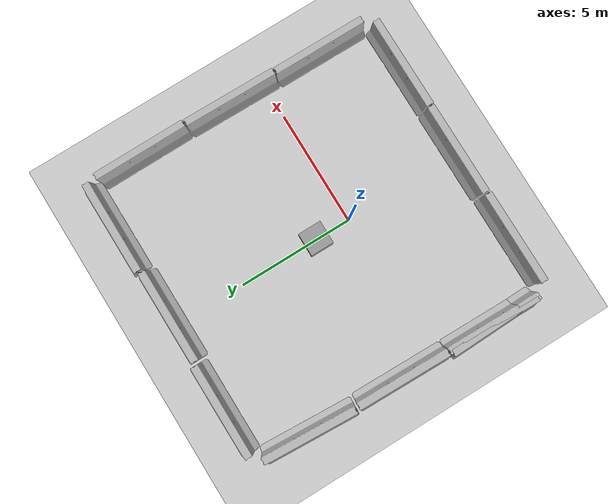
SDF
<sdf version="1.4">
 <world name="default">
  <light name="sun" type="directional">
   <pose>0 0 10 0 -0 0</pose>
   <diffuse>0.8 0.8 0.8 1</diffuse>
   <specular>0.2 0.2 0.2 1</specular>
   <attenuation>
    <range>1000</range>
    <constant>0.9</constant>
    <linear>0.01</linear>
    <quadratic>0.001</quadratic>
   </attenuation>
   <direction>-0.5 0.1 -0.9</direction>
  </light>
  <model name="ground_plane">
   <static>1</static>
   <link name="link">
    <collision name="collision">
     <geometry><plane><normal>0 0 1</normal><size>100 100</size></plane></geometry>
     <surface><friction><ode><mu>100</mu><mu2>50</mu2></ode></friction></surface>
    </collision>
    <visual name="visual">
     <cast_shadows>0</cast_shadows>
     <geometry><plane><normal>0 0 1</normal><size>100 100</size></plane></geometry>
     <material>
      <script><uri>file://media/materials/scripts/gazebo.material</uri><name>Gazebo/Grey</name></script>
     </material>
    </visual>
    <velocity_decay><linear>0</linear><angular>0</angular></velocity_decay>
   </link>
  </model>
  <physics type="ode">
   <max_step_size>0.001</max_step_size>
   <real_time_factor>1</real_time_factor>
   <real_time_update_rate>1000</real_time_update_rate>
   <gravity>0 0 -9.8</gravity>
  </physics>
  <scene><ambient>0.4 0.4 0.4 1</ambient><background>0.7 0.7 0.7 1</background><shadows>1</shadows></scene>
  <spherical_coordinates>
   <surface_model>EARTH_WGS84</surface_model>
   <latitude_deg>0</latitude_deg>
   <longitude_deg>0</longitude_deg>
   <elevation>0</elevation>
   <heading_deg>0</heading_deg>
  </spherical_coordinates>
  <model name="jersey_barrier">
   <static>1</static>
   <link name="link">
    <visual name="visual">
     <geometry><mesh><uri>model://jersey_barrier/meshes/jersey_barrier.dae</uri></mesh></geometry>
    </visual>
    <collision name="upright">
     <pose>0 0 0.5715 0 -0 0</pose>
     <geometry><box><size>4.06542 0.3063 1.143</size></box></geometry>
    </collision>
    <collision name="base">
     <pose>0 0 0.032258 0 -0 0</pose>
     <geometry><box><size>4.06542 0.8107 0.064516</size></box></geometry>
    </collision>
    <collision name="base2">
     <pose>0 0 0.1 0 -0 0</pose>
     <geometry><box><size>4.06542 0.65 0.1</size></box></geometry>
    </collision>
    <collision name="base3">
     <pose>0 0 0.2 0 -0 0</pose>
     <geometry><box><size>4.06542 0.5 0.1</size></box></geometry>
    </collision>
    <collision name="left-angle">
     <pose>0 -0.224 0.2401 0.9 -0 0</pose>
     <geometry><box><size>4.06542 0.5 0.064516</size></box></geometry>
    </collision>
    <collision name="right-angle">
     <pose>0 0.224 0.2401 -0.9 0 0</pose>
     <geometry><box><size>4.06542 0.5 0.064516</size></box></geometry>
    </collision>
    <velocity_decay><linear>0</linear><angular>0</angular></velocity_decay>
   </link>
   <pose>-6.48598 -2.61961 0 0 0 -1.54148</pose>
  </model>
  <model name="jersey_barrier_0">
   <static>1</static>
   <link name="link">
    <visual name="visual">
     <geometry><mesh><uri>model://jersey_barrier/meshes/jersey_barrier.dae</uri></mesh></geometry>
    </visual>
    <collision name="upright">
     <pose>0 0 0.5715 0 -0 0</pose>
     <geometry><box><size>4.06542 0.3063 1.143</size></box></geometry>
    </collision>
    <collision name="base">
     <pose>0 0 0.032258 0 -0 0</pose>
     <geometry><box><size>4.06542 0.8107 0.064516</size></box></geometry>
    </collision>
    <collision name="base2">
     <pose>0 0 0.1 0 -0 0</pose>
     <geometry><box><size>4.06542 0.65 0.1</size></box></geometry>
    </collision>
    <collision name="base3">
     <pose>0 0 0.2 0 -0 0</pose>
     <geometry><box><size>4.06542 0.5 0.1</size></box></geometry>
    </collision>
    <collision name="left-angle">
     <pose>0 -0.224 0.2401 0.9 -0 0</pose>
     <geometry><box><size>4.06542 0.5 0.064516</size></box></geometry>
    </collision>
    <collision name="right-angle">
     <pose>0 0.224 0.2401 -0.9 0 0</pose>
     <geometry><box><size>4.06542 0.5 0.064516</size></box></geometry>
    </collision>
    <velocity_decay><linear>0</linear><angular>0</angular></velocity_decay>
   </link>
   <pose>4.1237 -5.07211 0 0 -0 0</pose>
  </model>
  <model name="jersey_barrier_1">
   <static>1</static>
   <link name="link">
    <visual name="visual">
     <geometry><mesh><uri>model://jersey_barrier/meshes/jersey_barrier.dae</uri></mesh></geometry>
    </visual>
    <collision name="upright">
     <pose>0 0 0.5715 0 -0 0</pose>
     <geometry><box><size>4.06542 0.3063 1.143</size></box></geometry>
    </collision>
    <collision name="base">
     <pose>0 0 0.032258 0 -0 0</pose>
     <geometry><box><size>4.06542 0.8107 0.064516</size></box></geometry>
    </collision>
    <collision name="base2">
     <pose>0 0 0.1 0 -0 0</pose>
     <geometry><box><size>4.06542 0.65 0.1</size></box></geometry>
    </collision>
    <collision name="base3">
     <pose>0 0 0.2 0 -0 0</pose>
     <geometry><box><size>4.06542 0.5 0.1</size></box></geometry>
    </collision>
    <collision name="left-angle">
     <pose>0 -0.224 0.2401 0.9 -0 0</pose>
     <geometry><box><size>4.06542 0.5 0.064516</size></box></geometry>
    </collision>
    <collision name="right-angle">
     <pose>0 0.224 0.2401 -0.9 0 0</pose>
     <geometry><box><size>4.06542 0.5 0.064516</size></box></geometry>
    </collision>
    <velocity_decay><linear>0</linear><angular>0</angular></velocity_decay>
   </link>
   <pose>-4.07034 -5.10144 0 0 -0 0</pose>
  </model>
  <model name="jersey_barrier_2">
   <static>1</static>
   <link name="link">
    <visual name="visual">
     <geometry><mesh><uri>model://jersey_barrier/meshes/jersey_barrier.dae</uri></mesh></geometry>
    </visual>
    <collision name="upright">
     <pose>0 0 0.5715 0 -0 0</pose>
     <geometry><box><size>4.06542 0.3063 1.143</size></box></geometry>
    </collision>
    <collision name="base">
     <pose>0 0 0.032258 0 -0 0</pose>
     <geometry><box><size>4.06542 0.8107 0.064516</size></box></geometry>
    </collision>
    <collision name="base2">
     <pose>0 0 0.1 0 -0 0</pose>
     <geometry><box><size>4.06542 0.65 0.1</size></box></geometry>
    </collision>
    <collision name="base3">
     <pose>0 0 0.2 0 -0 0</pose>
     <geometry><box><size>4.06542 0.5 0.1</size></box></geometry>
    </collision>
    <collision name="left-angle">
     <pose>0 -0.224 0.2401 0.9 -0 0</pose>
     <geometry><box><size>4.06542 0.5 0.064516</size></box></geometry>
    </collision>
    <collision name="right-angle">
     <pose>0 0.224 0.2401 -0.9 0 0</pose>
     <geometry><box><size>4.06542 0.5 0.064516</size></box></geometry>
    </collision>
    <velocity_decay><linear>0</linear><angular>0</angular></velocity_decay>
   </link>
   <pose>-6.43913 -2.53884 0 0 0 -1.58372</pose>
  </model>
  <model name="jersey_barrier_3">
   <static>1</static>
   <link name="link">
    <visual name="visual">
     <geometry><mesh><uri>model://jersey_barrier/meshes/jersey_barrier.dae</uri></mesh></geometry>
    </visual>
    <collision name="upright">
     <pose>0 0 0.5715 0 -0 0</pose>
     <geometry><box><size>4.06542 0.3063 1.143</size></box></geometry>
    </collision>
    <collision name="base">
     <pose>0 0 0.032258 0 -0 0</pose>
     <geometry><box><size>4.06542 0.8107 0.064516</size></box></geometry>
    </collision>
    <collision name="base2">
     <pose>0 0 0.1 0 -0 0</pose>
     <geometry><box><size>4.06542 0.65 0.1</size></box></geometry>
    </collision>
    <collision name="base3">
     <pose>0 0 0.2 0 -0 0</pose>
     <geometry><box><size>4.06542 0.5 0.1</size></box></geometry>
    </collision>
    <collision name="left-angle">
     <pose>0 -0.224 0.2401 0.9 -0 0</pose>
     <geometry><box><size>4.06542 0.5 0.064516</size></box></geometry>
    </collision>
    <collision name="right-angle">
     <pose>0 0.224 0.2401 -0.9 0 0</pose>
     <geometry><box><size>4.06542 0.5 0.064516</size></box></geometry>
    </collision>
    <velocity_decay><linear>0</linear><angular>0</angular></velocity_decay>
   </link>
   <pose>-6.38431 1.54285 0 0 -0 1.55253</pose>
  </model>
  <model name="jersey_barrier_4">
   <static>1</static>
   <link name="link">
    <visual name="visual">
     <geometry><mesh><uri>model://jersey_barrier/meshes/jersey_barrier.dae</uri></mesh></geometry>
    </visual>
    <collision name="upright">
     <pose>0 0 0.5715 0 -0 0</pose>
     <geometry><box><size>4.06542 0.3063 1.143</size></box></geometry>
    </collision>
    <collision name="base">
     <pose>0 0 0.032258 0 -0 0</pose>
     <geometry><box><size>4.06542 0.8107 0.064516</size></box></geometry>
    </collision>
    <collision name="base2">
     <pose>0 0 0.1 0 -0 0</pose>
     <geometry><box><size>4.06542 0.65 0.1</size></box></geometry>
    </collision>
    <collision name="base3">
     <pose>0 0 0.2 0 -0 0</pose>
     <geometry><box><size>4.06542 0.5 0.1</size></box></geometry>
    </collision>
    <collision name="left-angle">
     <pose>0 -0.224 0.2401 0.9 -0 0</pose>
     <geometry><box><size>4.06542 0.5 0.064516</size></box></geometry>
    </collision>
    <collision name="right-angle">
     <pose>0 0.224 0.2401 -0.9 0 0</pose>
     <geometry><box><size>4.06542 0.5 0.064516</size></box></geometry>
    </collision>
    <velocity_decay><linear>0</linear><angular>0</angular></velocity_decay>
   </link>
   <pose>-6.28327 5.72174 0 0 -0 1.51388</pose>
  </model>
  <model name="jersey_barrier_5">
   <static>1</static>
   <link name="link">
    <visual name="visual">
     <geometry><mesh><uri>model://jersey_barrier/meshes/jersey_barrier.dae</uri></mesh></geometry>
    </visual>
    <collision name="upright">
     <pose>0 0 0.5715 0 -0 0</pose>
     <geometry><box><size>4.06542 0.3063 1.143</size></box></geometry>
    </collision>
    <collision name="base">
     <pose>0 0 0.032258 0 -0 0</pose>
     <geometry><box><size>4.06542 0.8107 0.064516</size></box></geometry>
    </collision>
    <collision name="base2">
     <pose>0 0 0.1 0 -0 0</pose>
     <geometry><box><size>4.06542 0.65 0.1</size></box></geometry>
    </collision>
    <collision name="base3">
     <pose>0 0 0.2 0 -0 0</pose>
     <geometry><box><size>4.06542 0.5 0.1</size></box></geometry>
    </collision>
    <collision name="left-angle">
     <pose>0 -0.224 0.2401 0.9 -0 0</pose>
     <geometry><box><size>4.06542 0.5 0.064516</size></box></geometry>
    </collision>
    <collision name="right-angle">
     <pose>0 0.224 0.2401 -0.9 0 0</pose>
     <geometry><box><size>4.06542 0.5 0.064516</size></box></geometry>
    </collision>
    <velocity_decay><linear>0</linear><angular>0</angular></velocity_decay>
   </link>
   <pose>-3.76251 8.12118 0 0 -0 0</pose>
  </model>
  <model name="jersey_barrier_6">
   <static>1</static>
   <link name="link">
    <visual name="visual">
     <geometry><mesh><uri>model://jersey_barrier/meshes/jersey_barrier.dae</uri></mesh></geometry>
    </visual>
    <collision name="upright">
     <pose>0 0 0.5715 0 -0 0</pose>
     <geometry><box><size>4.06542 0.3063 1.143</size></box></geometry>
    </collision>
    <collision name="base">
     <pose>0 0 0.032258 0 -0 0</pose>
     <geometry><box><size>4.06542 0.8107 0.064516</size></box></geometry>
    </collision>
    <collision name="base2">
     <pose>0 0 0.1 0 -0 0</pose>
     <geometry><box><size>4.06542 0.65 0.1</size></box></geometry>
    </collision>
    <collision name="base3">
     <pose>0 0 0.2 0 -0 0</pose>
     <geometry><box><size>4.06542 0.5 0.1</size></box></geometry>
    </collision>
    <collision name="left-angle">
     <pose>0 -0.224 0.2401 0.9 -0 0</pose>
     <geometry><box><size>4.06542 0.5 0.064516</size></box></geometry>
    </collision>
    <collision name="right-angle">
     <pose>0 0.224 0.2401 -0.9 0 0</pose>
     <geometry><box><size>4.06542 0.5 0.064516</size></box></geometry>
    </collision>
    <velocity_decay><linear>0</linear><angular>0</angular></velocity_decay>
   </link>
   <pose>6.47323 -2.59814 0 0 0 -1.57577</pose>
  </model>
  <model name="jersey_barrier_7">
   <static>1</static>
   <link name="link">
    <visual name="visual">
     <geometry><mesh><uri>model://jersey_barrier/meshes/jersey_barrier.dae</uri></mesh></geometry>
    </visual>
    <collision name="upright">
     <pose>0 0 0.5715 0 -0 0</pose>
     <geometry><box><size>4.06542 0.3063 1.143</size></box></geometry>
    </collision>
    <collision name="base">
     <pose>0 0 0.032258 0 -0 0</pose>
     <geometry><box><size>4.06542 0.8107 0.064516</size></box></geometry>
    </collision>
    <collision name="base2">
     <pose>0 0 0.1 0 -0 0</pose>
     <geometry><box><size>4.06542 0.65 0.1</size></box></geometry>
    </collision>
    <collision name="base3">
     <pose>0 0 0.2 0 -0 0</pose>
     <geometry><box><size>4.06542 0.5 0.1</size></box></geometry>
    </collision>
    <collision name="left-angle">
     <pose>0 -0.224 0.2401 0.9 -0 0</pose>
     <geometry><box><size>4.06542 0.5 0.064516</size></box></geometry>
    </collision>
    <collision name="right-angle">
     <pose>0 0.224 0.2401 -0.9 0 0</pose>
     <geometry><box><size>4.06542 0.5 0.064516</size></box></geometry>
    </collision>
    <velocity_decay><linear>0</linear><angular>0</angular></velocity_decay>
   </link>
   <pose>6.54744 1.50327 0 0 0 -1.58419</pose>
  </model>
  <model name="jersey_barrier_8">
   <static>1</static>
   <link name="link">
    <visual name="visual">
     <geometry><mesh><uri>model://jersey_barrier/meshes/jersey_barrier.dae</uri></mesh></geometry>
    </visual>
    <collision name="upright">
     <pose>0 0 0.5715 0 -0 0</pose>
     <geometry><box><size>4.06542 0.3063 1.143</size></box></geometry>
    </collision>
    <collision name="base">
     <pose>0 0 0.032258 0 -0 0</pose>
     <geometry><box><size>4.06542 0.8107 0.064516</size></box></geometry>
    </collision>
    <collision name="base2">
     <pose>0 0 0.1 0 -0 0</pose>
     <geometry><box><size>4.06542 0.65 0.1</size></box></geometry>
    </collision>
    <collision name="base3">
     <pose>0 0 0.2 0 -0 0</pose>
     <geometry><box><size>4.06542 0.5 0.1</size></box></geometry>
    </collision>
    <collision name="left-angle">
     <pose>0 -0.224 0.2401 0.9 -0 0</pose>
     <geometry><box><size>4.06542 0.5 0.064516</size></box></geometry>
    </collision>
    <collision name="right-angle">
     <pose>0 0.224 0.2401 -0.9 0 0</pose>
     <geometry><box><size>4.06542 0.5 0.064516</size></box></geometry>
    </collision>
    <velocity_decay><linear>0</linear><angular>0</angular></velocity_decay>
   </link>
   <pose>6.60169 5.61544 0 0 0 -1.56768</pose>
  </model>
  <model name="jersey_barrier_9">
   <static>1</static>
   <link name="link">
    <visual name="visual">
     <geometry><mesh><uri>model://jersey_barrier/meshes/jersey_barrier.dae</uri></mesh></geometry>
    </visual>
    <collision name="upright">
     <pose>0 0 0.5715 0 -0 0</pose>
     <geometry><box><size>4.06542 0.3063 1.143</size></box></geometry>
    </collision>
    <collision name="base">
     <pose>0 0 0.032258 0 -0 0</pose>
     <geometry><box><size>4.06542 0.8107 0.064516</size></box></geometry>
    </collision>
    <collision name="base2">
     <pose>0 0 0.1 0 -0 0</pose>
     <geometry><box><size>4.06542 0.65 0.1</size></box></geometry>
    </collision>
    <collision name="base3">
     <pose>0 0 0.2 0 -0 0</pose>
     <geometry><box><size>4.06542 0.5 0.1</size></box></geometry>
    </collision>
    <collision name="left-angle">
     <pose>0 -0.224 0.2401 0.9 -0 0</pose>
     <geometry><box><size>4.06542 0.5 0.064516</size></box></geometry>
    </collision>
    <collision name="right-angle">
     <pose>0 0.224 0.2401 -0.9 0 0</pose>
     <geometry><box><size>4.06542 0.5 0.064516</size></box></geometry>
    </collision>
    <velocity_decay><linear>0</linear><angular>0</angular></velocity_decay>
   </link>
   <pose>4.54988 8.09929 0 0 -0 0</pose>
  </model>
  <model name="jersey_barrier_10">
   <static>1</static>
   <link name="link">
    <visual name="visual">
     <geometry><mesh><uri>model://jersey_barrier/meshes/jersey_barrier.dae</uri></mesh></geometry>
    </visual>
    <collision name="upright">
     <pose>0 0 0.5715 0 -0 0</pose>
     <geometry><box><size>4.06542 0.3063 1.143</size></box></geometry>
    </collision>
    <collision name="base">
     <pose>0 0 0.032258 0 -0 0</pose>
     <geometry><box><size>4.06542 0.8107 0.064516</size></box></geometry>
    </collision>
    <collision name="base2">
     <pose>0 0 0.1 0 -0 0</pose>
     <geometry><box><size>4.06542 0.65 0.1</size></box></geometry>
    </collision>
    <collision name="base3">
     <pose>0 0 0.2 0 -0 0</pose>
     <geometry><box><size>4.06542 0.5 0.1</size></box></geometry>
    </collision>
    <collision name="left-angle">
     <pose>0 -0.224 0.2401 0.9 -0 0</pose>
     <geometry><box><size>4.06542 0.5 0.064516</size></box></geometry>
    </collision>
    <collision name="right-angle">
     <pose>0 0.224 0.2401 -0.9 0 0</pose>
     <geometry><box><size>4.06542 0.5 0.064516</size></box></geometry>
    </collision>
    <velocity_decay><linear>0</linear><angular>0</angular></velocity_decay>
   </link>
   <pose>0.411466 8 0 0 -0 0</pose>
  </model>
  <model name="unit_box_1">
   <pose>-0 1.55228 0.5 0 -0 0</pose>
   <link name="link">
    <inertial>
     <mass>1</mass>
     <inertia><ixx>1</ixx><ixy>0</ixy><ixz>0</ixz><iyy>1</iyy><iyz>0</iyz><izz>1</izz></inertia>
    </inertial>
    <collision name="collision"><geometry><box><size>1 1 1</size></box></geometry></collision>
    <visual name="visual">
     <geometry><box><size>1 1 1</size></box></geometry>
     <material>
      <script><uri>file://media/materials/scripts/gazebo.material</uri><name>Gazebo/Grey</name></script>
     </material>
    </visual>
    <velocity_decay><linear>0</linear><angular>0</angular></velocity_decay>
   </link>
   <static>0</static>
  </model>
  <model name="jersey_barrier_11">
   <static>1</static>
   <link name="link">
    <visual name="visual">
     <geometry><mesh><uri>model://jersey_barrier/meshes/jersey_barrier.dae</uri></mesh></geometry>
    </visual>
    <collision name="upright">
     <pose>0 0 0.5715 0 -0 0</pose>
     <geometry><box><size>4.06542 0.3063 1.143</size></box></geometry>
    </collision>
    <collision name="base">
     <pose>0 0 0.032258 0 -0 0</pose>
     <geometry><box><size>4.06542 0.8107 0.064516</size></box></geometry>
    </collision>
    <collision name="base2">
     <pose>0 0 0.1 0 -0 0</pose>
     <geometry><box><size>4.06542 0.65 0.1</size></box></geometry>
    </collision>
    <collision name="base3">
     <pose>0 0 0.2 0 -0 0</pose>
     <geometry><box><size>4.06542 0.5 0.1</size></box></geometry>
    </collision>
    <collision name="left-angle">
     <pose>0 -0.224 0.2401 0.9 -0 0</pose>
     <geometry><box><size>4.06542 0.5 0.064516</size></box></geometry>
    </collision>
    <collision name="right-angle">
     <pose>0 0.224 0.2401 -0.9 0 0</pose>
     <geometry><box><size>4.06542 0.5 0.064516</size></box></geometry>
    </collision>
    <velocity_decay><linear>0</linear><angular>0</angular></velocity_decay>
   </link>
   <pose>0.041129 -5.05944 0 0 -0 0</pose>
  </model>
 </world>
</sdf>
